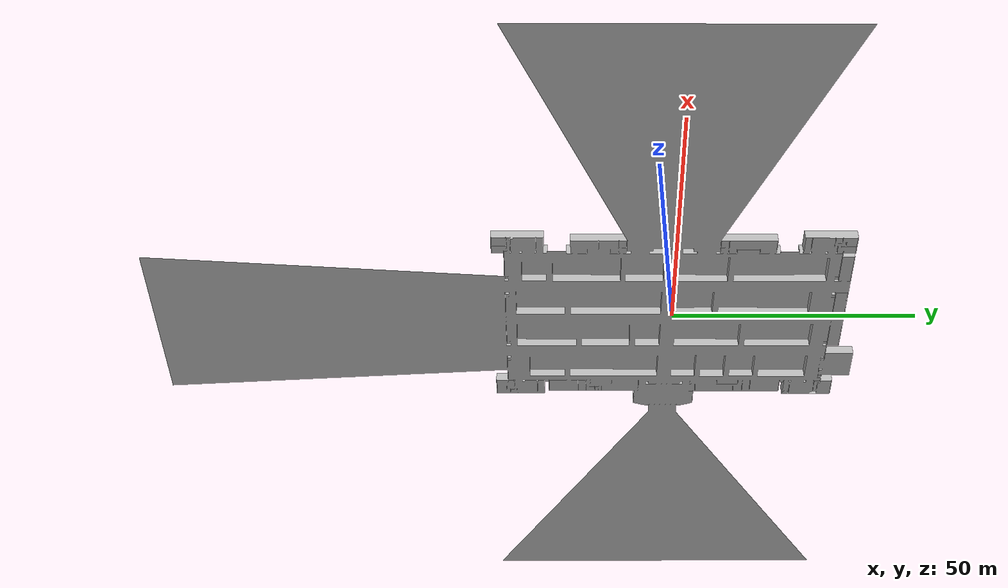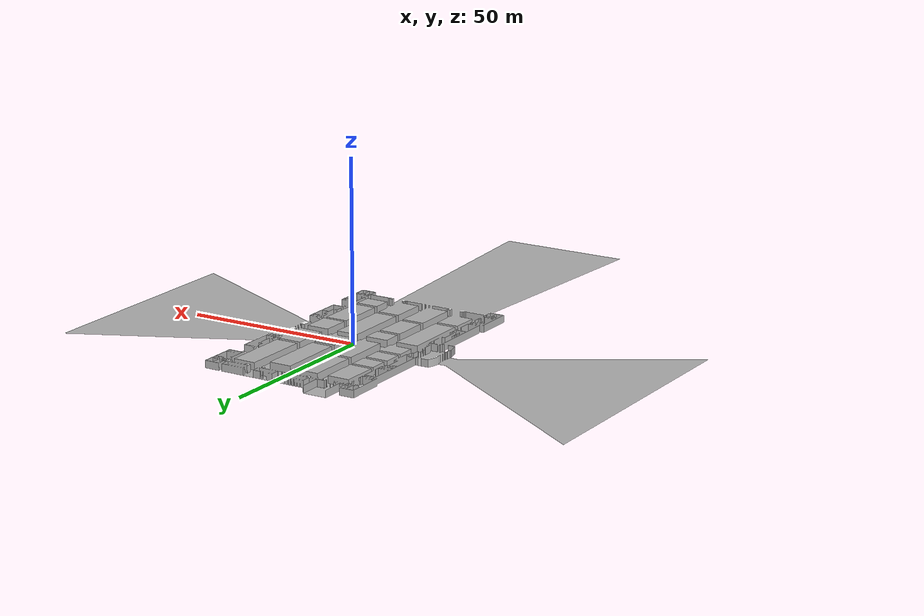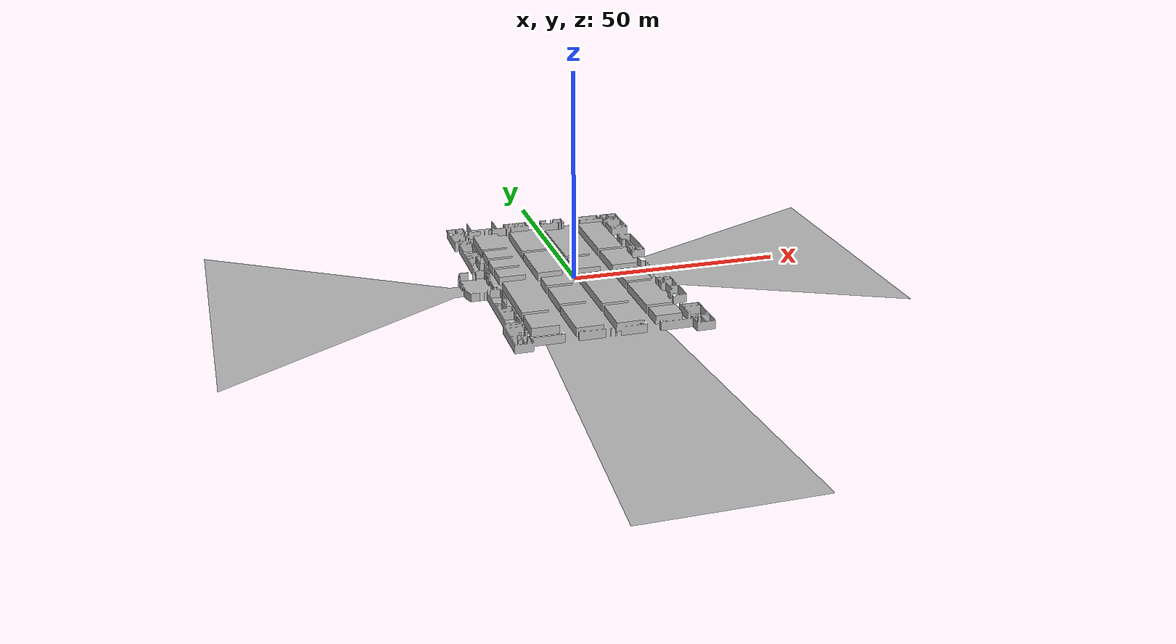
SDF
<?xml version="1.0" ?>
<sdf version="1.5">
  <model name="RC2016VRL_port2">
    <static>true</static>
    <pose>0 0 0.1 3.14 0 0</pose>
    <link name="link">
      <collision name="collision">
        <geometry>
          <mesh>
            <uri>model://RC2016VRL_port2/port2.dae</uri>
            <scale>0.815 0.687 1</scale>
          </mesh>
        </geometry>
      </collision>
      <visual name="visual">
        <geometry>
          <mesh>
            <uri>model://RC2016VRL_port2/port2.dae</uri>
            <scale>0.815 0.687 1</scale>
          </mesh>
        </geometry>
        <cast_shadows>false</cast_shadows>
      </visual>
    </link>
  </model>
</sdf>
